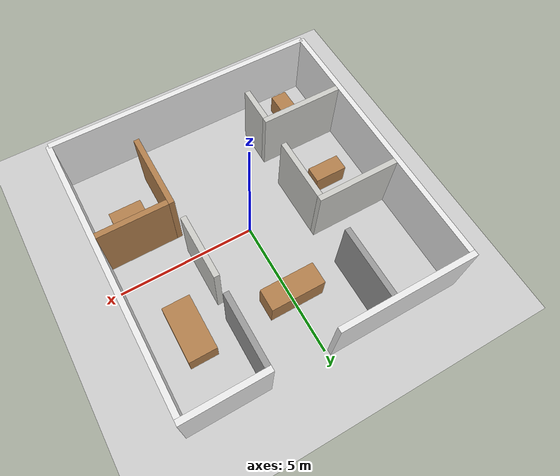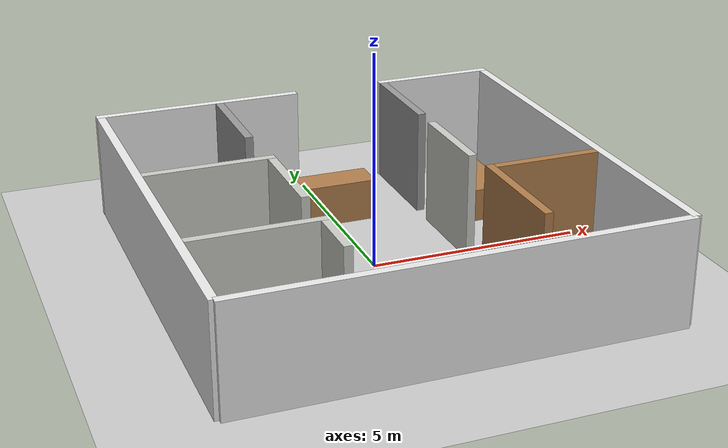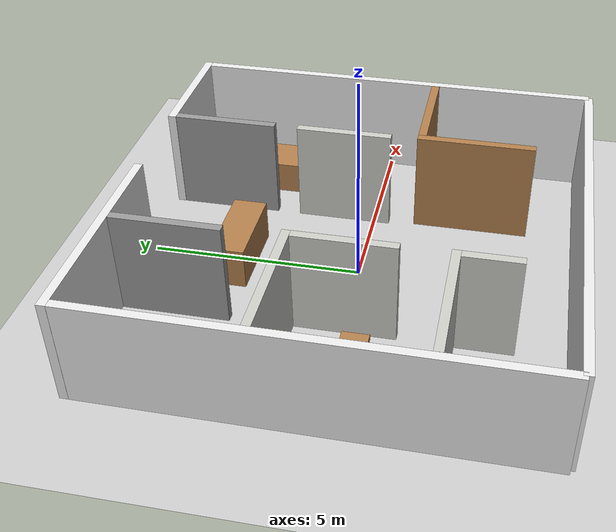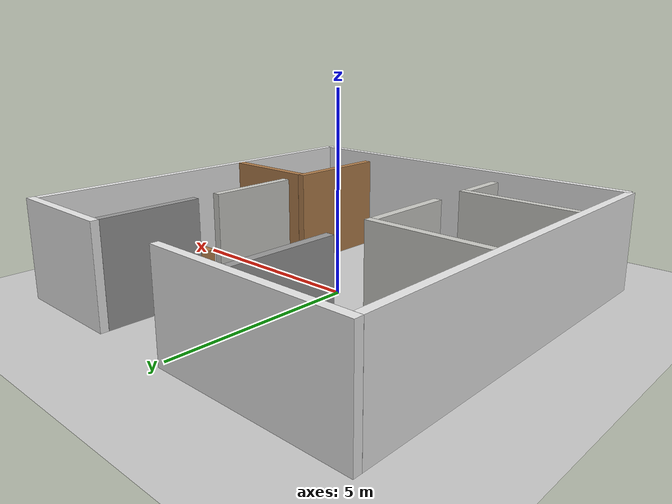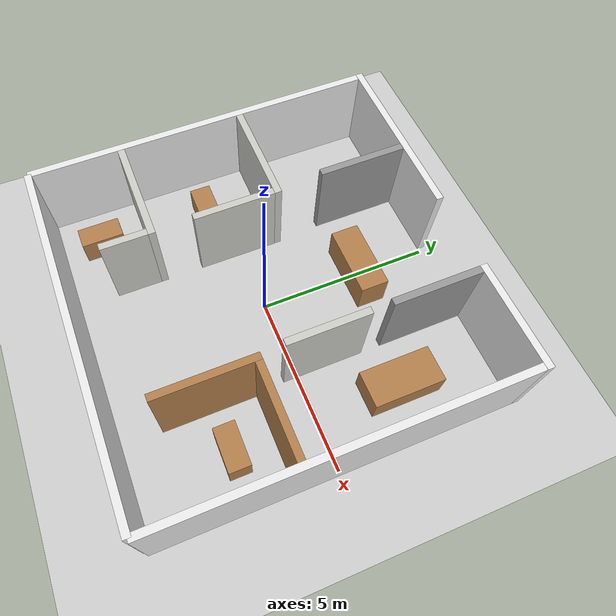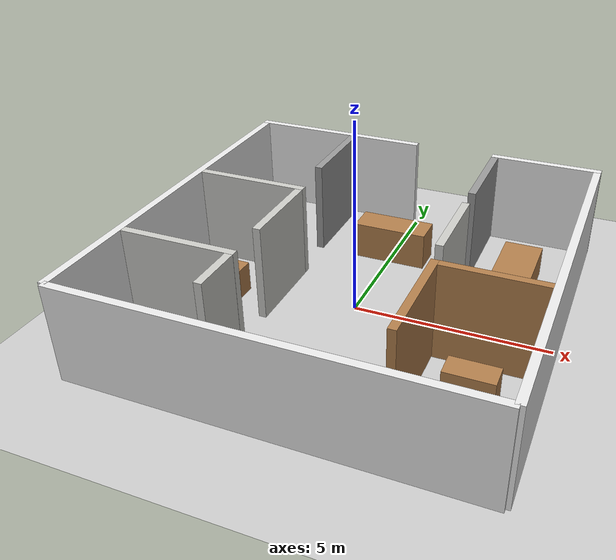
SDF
<sdf version="1.7">
 <world name="default">
  <model name="ground_plane">
   <static>1</static>
   <link name="link">
    <collision name="collision">
     <geometry><plane><normal>0 0 1</normal><size>100 100</size></plane></geometry>
     <surface><friction><ode><mu>100</mu><mu2>50</mu2></ode></friction></surface>
    </collision>
    <visual name="visual">
     <cast_shadows>0</cast_shadows>
     <geometry><plane><normal>0 0 1</normal><size>100 100</size></plane></geometry>
     <material>
      <script><uri>file://media/materials/scripts/gazebo.material</uri><name>Gazebo/Grey</name></script>
     </material>
    </visual>
   </link>
  </model>
  <light name="sun" type="directional">
   <pose>0 0 10 0 -0 0</pose>
   <diffuse>0.8 0.8 0.8 1</diffuse>
   <specular>0.2 0.2 0.2 1</specular>
   <attenuation>
    <range>1000</range>
    <constant>0.9</constant>
    <linear>0.01</linear>
    <quadratic>0.001</quadratic>
   </attenuation>
   <direction>-0.5 0.1 -0.9</direction>
   <spot><inner_angle>0</inner_angle><outer_angle>0</outer_angle><falloff>0</falloff></spot>
  </light>
  <physics type="ode">
   <real_time_update_rate>1000</real_time_update_rate>
   <max_step_size>0.001</max_step_size>
   <real_time_factor>1</real_time_factor>
  </physics>
  <scene><ambient>0.4 0.4 0.4 1</ambient><background>0.7 0.7 0.7 1</background><shadows>1</shadows></scene>
  <gravity>0 0 -9.8</gravity>
  <magnetic_field>6e-06 2.3e-05 -4.2e-05</magnetic_field>
  <atmosphere type="adiabatic"/>
  <audio><device>default</device></audio>
  <spherical_coordinates>
   <surface_model>EARTH_WGS84</surface_model>
   <latitude_deg>0</latitude_deg>
   <longitude_deg>0</longitude_deg>
   <elevation>0</elevation>
   <heading_deg>0</heading_deg>
  </spherical_coordinates>
  <model name="pared_frontal_der">
   <pose>3.59994 5.10066 1.25 0 -0 0</pose>
   <static>1</static>
   <link name="link">
    <collision name="collision"><geometry><box><size>3 0.2 2.5</size></box></geometry></collision>
    <visual name="visual">
     <geometry><box><size>3 0.2 2.5</size></box></geometry>
     <material>
      <script><name>Gazebo/White</name><uri>file://media/materials/scripts/gazebo.material</uri></script>
     </material>
    </visual>
   </link>
  </model>
  <model name="pared_trasera">
   <pose>0 -5 1.25 0 -0 0</pose>
   <static>1</static>
   <link name="link">
    <collision name="collision"><geometry><box><size>10 0.2 2.5</size></box></geometry></collision>
    <visual name="visual">
     <geometry><box><size>10 0.2 2.5</size></box></geometry>
     <material>
      <script><name>Gazebo/White</name><uri>file://media/materials/scripts/gazebo.material</uri></script>
     </material>
    </visual>
   </link>
  </model>
  <model name="pared_lateral_izq">
   <pose>-5 0 1.25 0 -0 0</pose>
   <static>1</static>
   <link name="link">
    <collision name="collision"><geometry><box><size>0.2 10 2.5</size></box></geometry></collision>
    <visual name="visual">
     <geometry><box><size>0.2 10 2.5</size></box></geometry>
     <material>
      <script><name>Gazebo/White</name><uri>file://media/materials/scripts/gazebo.material</uri></script>
     </material>
    </visual>
   </link>
  </model>
  <model name="pared_lateral_der">
   <pose>5 0 1.25 0 -0 0</pose>
   <static>1</static>
   <link name="link">
    <collision name="collision"><geometry><box><size>0.2 10 2.5</size></box></geometry></collision>
    <visual name="visual">
     <geometry><box><size>0.2 10 2.5</size></box></geometry>
     <material>
      <script><name>Gazebo/White</name><uri>file://media/materials/scripts/gazebo.material</uri></script>
     </material>
    </visual>
   </link>
  </model>
  <model name="division_recepcion_izq">
   <pose>-2.10023 3.74975 1.25 0 -0 0</pose>
   <static>1</static>
   <link name="link">
    <collision name="collision"><geometry><box><size>0.2 2.5 2.5</size></box></geometry></collision>
    <visual name="visual">
     <geometry><box><size>0.2 2.5 2.5</size></box></geometry>
     <material>
      <script><name>Gazebo/Grey</name><uri>file://media/materials/scripts/gazebo.material</uri></script>
     </material>
    </visual>
   </link>
  </model>
  <model name="division_recepcion_der">
   <pose>2.20183 3.74936 1.25 0 -0 0</pose>
   <static>1</static>
   <link name="link">
    <collision name="collision"><geometry><box><size>0.2 2.5 2.5</size></box></geometry></collision>
    <visual name="visual">
     <geometry><box><size>0.2 2.5 2.5</size></box></geometry>
     <material>
      <script><name>Gazebo/Grey</name><uri>file://media/materials/scripts/gazebo.material</uri></script>
     </material>
    </visual>
   </link>
  </model>
  <model name="pared_oficina1_frente">
   <pose>-3.40172 1.16407 1.25 0 -0 0</pose>
   <static>1</static>
   <link name="link">
    <collision name="collision"><geometry><box><size>3 0.2 2.5</size></box></geometry></collision>
    <visual name="visual">
     <geometry><box><size>3 0.2 2.5</size></box></geometry>
     <material>
      <script><name>Gazebo/CeilingTiled</name><uri>file://media/materials/scripts/gazebo.material</uri></script>
     </material>
    </visual>
   </link>
  </model>
  <model name="pared_oficina1_lateral">
   <pose>-1.99969 -0.086651 1.25 0 -0 0</pose>
   <static>1</static>
   <link name="link">
    <collision name="collision"><geometry><box><size>0.2 2.3 2.5</size></box></geometry></collision>
    <visual name="visual">
     <geometry><box><size>0.2 2.3 2.5</size></box></geometry>
     <material>
      <script><name>Gazebo/CeilingTiled</name><uri>file://media/materials/scripts/gazebo.material</uri></script>
     </material>
    </visual>
   </link>
  </model>
  <model name="pared_oficina2_frente">
   <pose>-3.39921 -2.38669 1.25 0 -0 0</pose>
   <static>1</static>
   <link name="link">
    <collision name="collision"><geometry><box><size>3 0.2 2.5</size></box></geometry></collision>
    <visual name="visual">
     <geometry><box><size>3 0.2 2.5</size></box></geometry>
     <material>
      <script><name>Gazebo/CeilingTiled</name><uri>file://media/materials/scripts/gazebo.material</uri></script>
     </material>
    </visual>
   </link>
  </model>
  <model name="pared_oficina2_lateral">
   <pose>-2.00148 -3.13664 1.25 0 -0 0</pose>
   <static>1</static>
   <link name="link">
    <collision name="collision"><geometry><box><size>0.2 1.3 2.5</size></box></geometry></collision>
    <visual name="visual">
     <geometry><box><size>0.2 1.3 2.5</size></box></geometry>
     <material>
      <script><name>Gazebo/CeilingTiled</name><uri>file://media/materials/scripts/gazebo.material</uri></script>
     </material>
    </visual>
   </link>
  </model>
  <model name="pared_oficina3_lateral">
   <pose>2.20299 0.779296 1.25 0 -0 0</pose>
   <static>1</static>
   <link name="link">
    <collision name="collision"><geometry><box><size>0.2 2.3 2.5</size></box></geometry></collision>
    <visual name="visual">
     <geometry><box><size>0.2 2.3 2.5</size></box></geometry>
     <material>
      <script><name>Gazebo/CeilingTiled</name><uri>file://media/materials/scripts/gazebo.material</uri></script>
     </material>
    </visual>
   </link>
  </model>
  <model name="pared_sala_frente">
   <pose>3.65062 -1.09408 1.25 0 -0 0</pose>
   <static>1</static>
   <link name="link">
    <collision name="collision"><geometry><box><size>2.5 0.2 2.5</size></box></geometry></collision>
    <visual name="visual">
     <geometry><box><size>2.5 0.2 2.5</size></box></geometry>
     <material>
      <script><name>Gazebo/Wood</name><uri>file://media/materials/scripts/gazebo.material</uri></script>
     </material>
    </visual>
   </link>
  </model>
  <model name="pared_sala_lateral">
   <pose>2.30214 -2.39609 1.25 0 -0 0</pose>
   <static>1</static>
   <link name="link">
    <collision name="collision"><geometry><box><size>0.2 2.8 2.5</size></box></geometry></collision>
    <visual name="visual">
     <geometry><box><size>0.2 2.8 2.5</size></box></geometry>
     <material>
      <script><name>Gazebo/Wood</name><uri>file://media/materials/scripts/gazebo.material</uri></script>
     </material>
    </visual>
   </link>
  </model>
  <model name="escritorio_of1">
   <pose>-3.5 -0.5 0.4 0 -0 0</pose>
   <static>1</static>
   <link name="link">
    <collision name="collision"><geometry><box><size>1.2 0.6 0.8</size></box></geometry></collision>
    <visual name="visual">
     <geometry><box><size>1.2 0.6 0.8</size></box></geometry>
     <material>
      <script><name>Gazebo/WoodPallet</name><uri>file://media/materials/scripts/gazebo.material</uri></script>
     </material>
    </visual>
   </link>
  </model>
  <model name="escritorio_of2">
   <pose>-3.673 -3.70375 0.4 0 -0 1.57678</pose>
   <static>1</static>
   <link name="link">
    <collision name="collision"><geometry><box><size>1.2 0.6 0.8</size></box></geometry></collision>
    <visual name="visual">
     <geometry><box><size>1.2 0.6 0.8</size></box></geometry>
     <material>
      <script><name>Gazebo/WoodPallet</name><uri>file://media/materials/scripts/gazebo.material</uri></script>
     </material>
    </visual>
   </link>
  </model>
  <model name="escritorio_of3">
   <pose>3.60379 -2.30701 0.4 0 -0 0</pose>
   <static>1</static>
   <link name="link">
    <collision name="collision"><geometry><box><size>1.2 0.6 0.8</size></box></geometry></collision>
    <visual name="visual">
     <geometry><box><size>1.2 0.6 0.8</size></box></geometry>
     <material>
      <script><name>Gazebo/WoodPallet</name><uri>file://media/materials/scripts/gazebo.material</uri></script>
     </material>
    </visual>
   </link>
  </model>
  <model name="mesa_juntas">
   <pose>3.54447 2.41303 0.4 0 -0 1.57026</pose>
   <static>1</static>
   <link name="link">
    <collision name="collision"><geometry><box><size>2 1 0.8</size></box></geometry></collision>
    <visual name="visual">
     <geometry><box><size>2 1 0.8</size></box></geometry>
     <material>
      <script><name>Gazebo/WoodPallet</name><uri>file://media/materials/scripts/gazebo.material</uri></script>
     </material>
    </visual>
   </link>
  </model>
  <model name="mostrador_recepcion">
   <pose>0 2.86892 0.5 0 -0 0</pose>
   <static>1</static>
   <link name="link">
    <collision name="collision"><geometry><box><size>2 0.8 1</size></box></geometry></collision>
    <visual name="visual">
     <geometry><box><size>2 0.8 1</size></box></geometry>
     <material>
      <script><name>Gazebo/WoodPallet</name><uri>file://media/materials/scripts/gazebo.material</uri></script>
     </material>
    </visual>
   </link>
  </model>
  <model name="pared_frontal_izq">
   <link name="link">
    <inertial>
     <mass>1</mass>
     <inertia><ixx>1</ixx><ixy>0</ixy><ixz>0</ixz><iyy>1</iyy><iyz>0</iyz><izz>1</izz></inertia>
    </inertial>
    <visual name="visual">
     <geometry><box><size>5 0.2 2.5</size></box></geometry>
     <material>
      <script><name>Gazebo/White</name><uri>file://media/materials/scripts/gazebo.material</uri></script>
      <shader type="pixel"><normal_map>__default__</normal_map></shader>
      <ambient>1 1 1 1</ambient>
      <diffuse>1 1 1 1</diffuse>
      <specular>0 0 0 1</specular>
      <emissive>0 0 0 1</emissive>
     </material>
    </visual>
    <collision name="collision">
     <geometry><box><size>5 0.2 2.5</size></box></geometry>
     <surface>
      <friction>
       <ode><mu>1</mu><mu2>1</mu2><fdir1>0 0 0</fdir1><slip1>0</slip1><slip2>0</slip2></ode>
       <torsional>
        <coefficient>1</coefficient>
        <patch_radius>0</patch_radius>
        <surface_radius>0</surface_radius>
        <use_patch_radius>1</use_patch_radius>
        <ode><slip>0</slip></ode>
       </torsional>
      </friction>
      <bounce><restitution_coefficient>0</restitution_coefficient><threshold>1e+06</threshold></bounce>
      <contact>
       <collide_without_contact>0</collide_without_contact>
       <collide_without_contact_bitmask>1</collide_without_contact_bitmask>
       <collide_bitmask>1</collide_bitmask>
       <ode>
        <soft_cfm>0</soft_cfm>
        <soft_erp>0.2</soft_erp>
        <kp>1e+13</kp>
        <kd>1</kd>
        <max_vel>0.01</max_vel>
        <min_depth>0</min_depth>
       </ode>
       <bullet>
        <split_impulse>1</split_impulse>
        <split_impulse_penetration_threshold>-0.01</split_impulse_penetration_threshold>
        <soft_cfm>0</soft_cfm>
        <soft_erp>0.2</soft_erp>
        <kp>1e+13</kp>
        <kd>1</kd>
       </bullet>
      </contact>
     </surface>
    </collision>
   </link>
   <static>1</static>
   <pose>-2.59986 5.10141 1.25 0 -0 0</pose>
  </model>
 </world>
</sdf>
